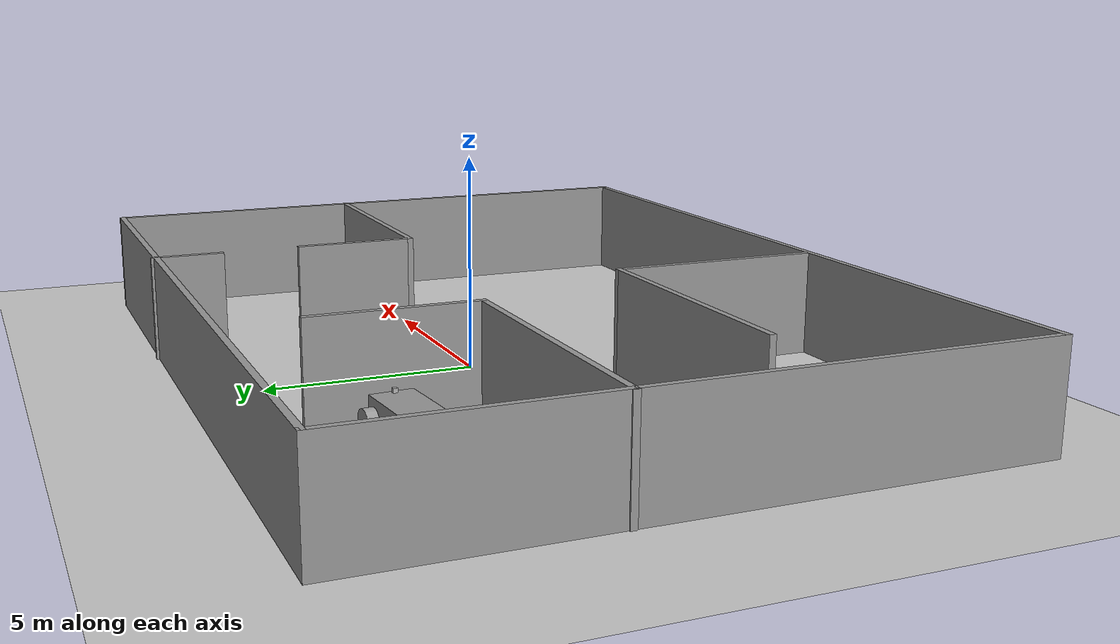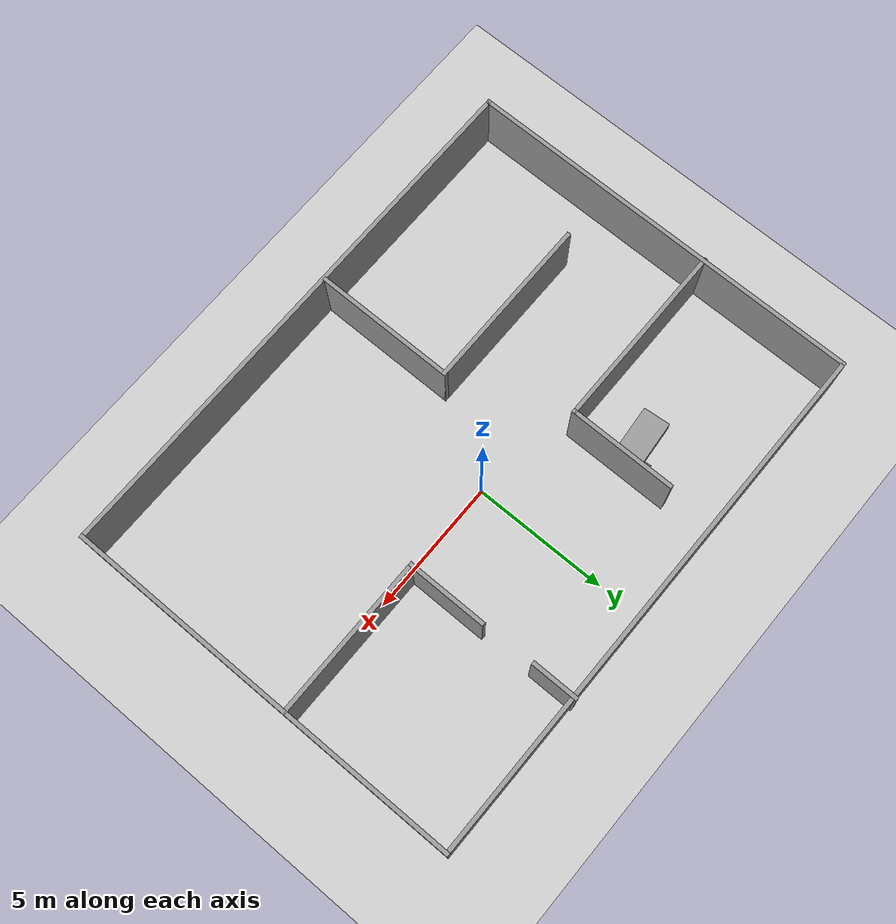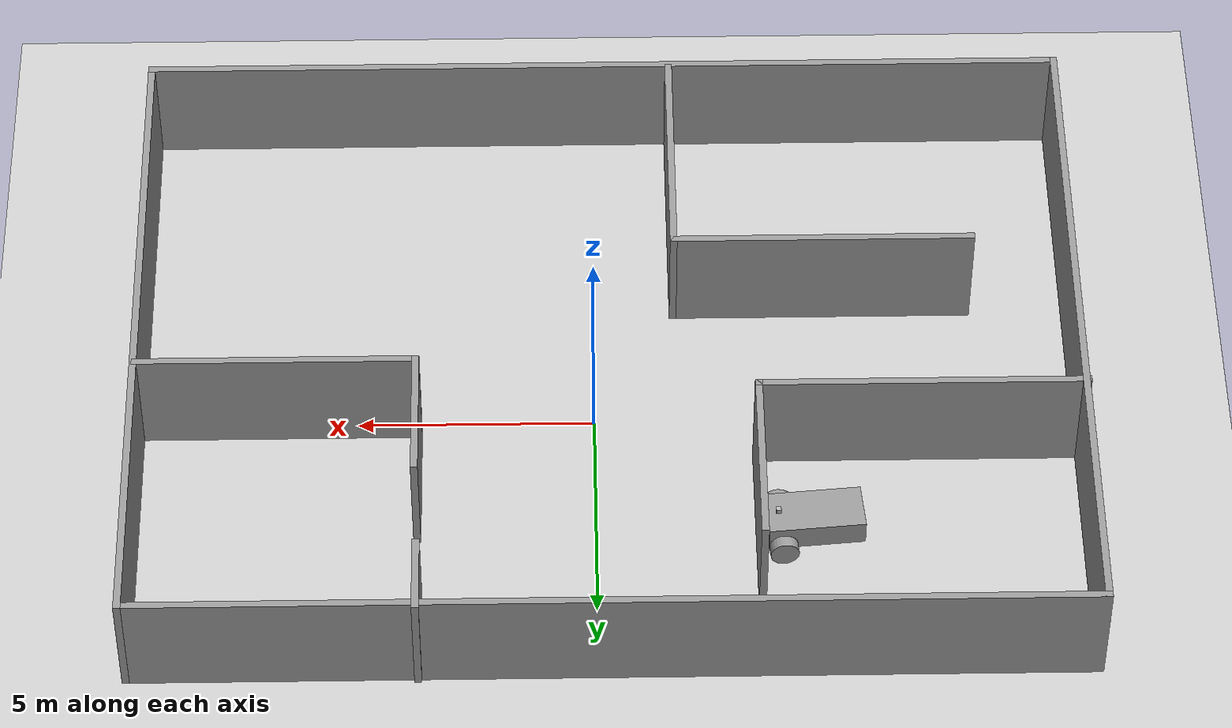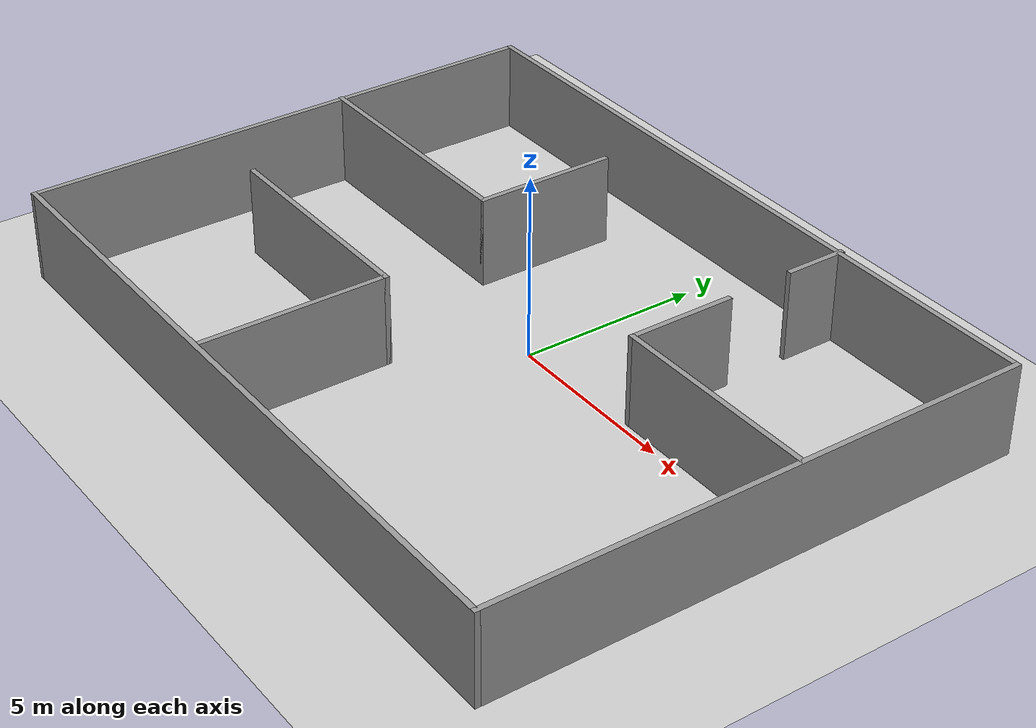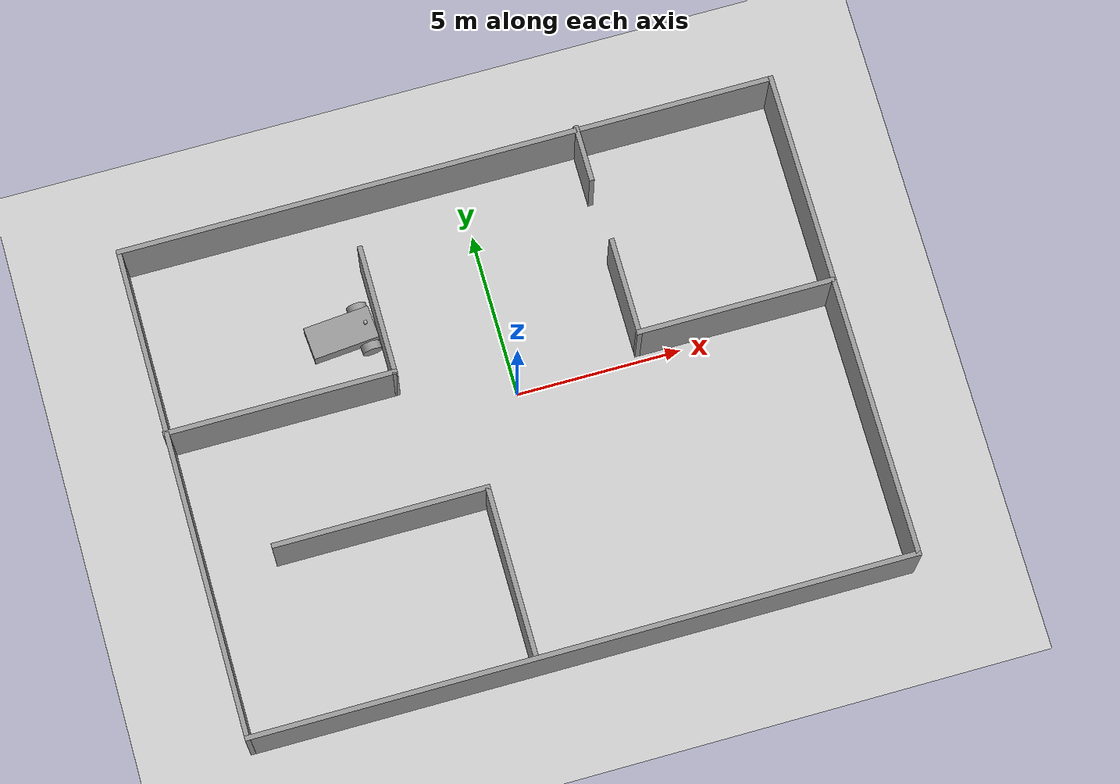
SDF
<sdf version="1.7">
 <world name="default">
  <light name="sun" type="directional">
   <pose>0 0 10 0 -0 0</pose>
   <diffuse>0.8 0.8 0.8 1</diffuse>
   <specular>0.2 0.2 0.2 1</specular>
   <attenuation>
    <range>1000</range>
    <constant>0.9</constant>
    <linear>0.01</linear>
    <quadratic>0.001</quadratic>
   </attenuation>
   <direction>-0.5 0.1 -0.9</direction>
   <spot><inner_angle>0</inner_angle><outer_angle>0</outer_angle><falloff>0</falloff></spot>
  </light>
  <model name="ground_plane">
   <static>1</static>
   <link name="link">
    <collision name="collision">
     <geometry><plane><normal>0 0 1</normal><size>100 100</size></plane></geometry>
     <surface><friction><ode><mu>100</mu><mu2>50</mu2></ode></friction></surface>
    </collision>
    <visual name="visual">
     <cast_shadows>0</cast_shadows>
     <geometry><plane><normal>0 0 1</normal><size>100 100</size></plane></geometry>
     <material>
      <script><uri>file://media/materials/scripts/gazebo.material</uri><name>Gazebo/Grey</name></script>
     </material>
    </visual>
   </link>
  </model>
  <gravity>0 0 -9.8</gravity>
  <magnetic_field>6e-06 2.3e-05 -4.2e-05</magnetic_field>
  <atmosphere type="adiabatic"/>
  <physics type="ode">
   <max_step_size>0.001</max_step_size>
   <real_time_factor>1</real_time_factor>
   <real_time_update_rate>1000</real_time_update_rate>
  </physics>
  <scene><ambient>0.4 0.4 0.4 1</ambient><background>0.7 0.7 0.7 1</background><shadows>1</shadows></scene>
  <audio><device>default</device></audio>
  <spherical_coordinates>
   <surface_model>EARTH_WGS84</surface_model>
   <latitude_deg>0</latitude_deg>
   <longitude_deg>0</longitude_deg>
   <elevation>0</elevation>
   <heading_deg>0</heading_deg>
  </spherical_coordinates>
  <model name="model">
   <pose>-0.321326 -0.7438 0 0 -0 0</pose>
   <link name="Wall_16">
    <collision name="Wall_16_Collision">
     <geometry><box><size>20 0.15 2.5</size></box></geometry>
     <pose>0 0 1.25 0 -0 0</pose>
    </collision>
    <visual name="Wall_16_Visual">
     <pose>0 0 1.25 0 -0 0</pose>
     <geometry><box><size>20 0.15 2.5</size></box></geometry>
     <material>
      <script><uri>file://media/materials/scripts/gazebo.material</uri><name>Gazebo/Grey</name></script>
      <ambient>1 1 1 1</ambient>
     </material>
     <meta><layer>0</layer></meta>
    </visual>
    <pose>0.017228 7.39371 0 0 -0 4e-06</pose>
   </link>
   <link name="Wall_17">
    <collision name="Wall_17_Collision">
     <geometry><box><size>15 0.15 2.5</size></box></geometry>
     <pose>0 0 1.25 0 -0 0</pose>
    </collision>
    <visual name="Wall_17_Visual">
     <pose>0 0 1.25 0 -0 0</pose>
     <geometry><box><size>15 0.15 2.5</size></box></geometry>
     <material>
      <script><uri>file://media/materials/scripts/gazebo.material</uri><name>Gazebo/Grey</name></script>
      <ambient>1 1 1 1</ambient>
     </material>
     <meta><layer>0</layer></meta>
    </visual>
    <pose>9.94228 -0.031247 0 0 -0 -1.5708</pose>
   </link>
   <link name="Wall_19">
    <collision name="Wall_19_Collision">
     <geometry><box><size>20 0.15 2.5</size></box></geometry>
     <pose>0 0 1.25 0 -0 0</pose>
    </collision>
    <visual name="Wall_19_Visual">
     <pose>0 0 1.25 0 -0 0</pose>
     <geometry><box><size>20 0.15 2.5</size></box></geometry>
     <material>
      <script><uri>file://media/materials/scripts/gazebo.material</uri><name>Gazebo/Grey</name></script>
      <ambient>1 1 1 1</ambient>
     </material>
     <meta><layer>0</layer></meta>
    </visual>
    <pose>0.017281 -7.45625 0 0 -0 3.14159</pose>
   </link>
   <link name="Wall_20">
    <collision name="Wall_20_Collision">
     <geometry><box><size>14.9999 0.15 2.5</size></box></geometry>
     <pose>0 0 1.25 0 -0 0</pose>
    </collision>
    <visual name="Wall_20_Visual">
     <pose>0 0 1.25 0 -0 0</pose>
     <geometry><box><size>14.9999 0.15 2.5</size></box></geometry>
     <material>
      <script><uri>file://media/materials/scripts/gazebo.material</uri><name>Gazebo/Grey</name></script>
      <ambient>1 1 1 1</ambient>
     </material>
     <meta><layer>0</layer></meta>
    </visual>
    <pose>-9.90777 -0.031286 0 0 -0 1.5708</pose>
   </link>
   <link name="Wall_23">
    <collision name="Wall_23_Collision">
     <geometry><box><size>7 0.15 2.5</size></box></geometry>
     <pose>0 0 1.25 0 -0 0</pose>
    </collision>
    <visual name="Wall_23_Visual">
     <pose>0 0 1.25 0 -0 0</pose>
     <geometry><box><size>7 0.15 2.5</size></box></geometry>
     <material>
      <script><uri>file://media/materials/scripts/gazebo.material</uri><name>Gazebo/Grey</name></script>
      <ambient>1 1 1 1</ambient>
     </material>
     <meta><layer>0</layer></meta>
    </visual>
    <pose>-6.51728 1.74902 0 0 -0 0</pose>
   </link>
   <link name="Wall_24">
    <collision name="Wall_24_Collision">
     <geometry><box><size>4 0.15 2.5</size></box></geometry>
     <pose>0 0 1.25 0 -0 0</pose>
    </collision>
    <visual name="Wall_24_Visual">
     <pose>0 0 1.25 0 -0 0</pose>
     <geometry><box><size>4 0.15 2.5</size></box></geometry>
     <material>
      <script><uri>file://media/materials/scripts/gazebo.material</uri><name>Gazebo/Grey</name></script>
      <ambient>1 1 1 1</ambient>
     </material>
     <meta><layer>0</layer></meta>
    </visual>
    <pose>-3.09228 3.67402 0 0 -0 1.5708</pose>
   </link>
   <link name="Wall_26">
    <collision name="Wall_26_Collision">
     <geometry><box><size>5.25 0.15 2.5</size></box></geometry>
     <pose>0 0 1.25 0 -0 0</pose>
    </collision>
    <visual name="Wall_26_Visual">
     <pose>0 0 1.25 0 -0 0</pose>
     <geometry><box><size>5.25 0.15 2.5</size></box></geometry>
     <material>
      <script><uri>file://media/materials/scripts/gazebo.material</uri><name>Gazebo/Grey</name></script>
      <ambient>1 1 1 1</ambient>
     </material>
     <meta><layer>0</layer></meta>
    </visual>
    <pose>-1.41491 -4.8295 0 0 -0 1.5708</pose>
   </link>
   <link name="Wall_27">
    <collision name="Wall_27_Collision">
     <geometry><box><size>6.5 0.15 2.5</size></box></geometry>
     <pose>0 0 1.25 0 -0 0</pose>
    </collision>
    <visual name="Wall_27_Visual">
     <pose>0 0 1.25 0 -0 0</pose>
     <geometry><box><size>6.5 0.15 2.5</size></box></geometry>
     <material>
      <script><uri>file://media/materials/scripts/gazebo.material</uri><name>Gazebo/Grey</name></script>
      <ambient>1 1 1 1</ambient>
     </material>
     <meta><layer>0</layer></meta>
    </visual>
    <pose>-4.58992 -2.2795 0 0 -0 3.14159</pose>
   </link>
   <link name="Wall_29">
    <collision name="Wall_29_Collision">
     <geometry><box><size>6 0.15 2.5</size></box></geometry>
     <pose>0 0 1.25 0 -0 0</pose>
    </collision>
    <visual name="Wall_29_Visual">
     <pose>0 0 1.25 0 -0 0</pose>
     <geometry><box><size>6 0.15 2.5</size></box></geometry>
     <material>
      <script><uri>file://media/materials/scripts/gazebo.material</uri><name>Gazebo/Grey</name></script>
      <ambient>1 1 1 1</ambient>
     </material>
     <meta><layer>0</layer></meta>
    </visual>
    <pose>6.97515 0.990149 0 0 -0 3.14159</pose>
   </link>
   <link name="Wall_30">
    <collision name="Wall_30_Collision">
     <geometry><box><size>3 0.15 2.5</size></box></geometry>
     <pose>0 0 1.25 0 -0 0</pose>
    </collision>
    <visual name="Wall_30_Visual">
     <pose>0 0 1.25 0 -0 0</pose>
     <geometry><box><size>3 0.15 2.5</size></box></geometry>
     <material>
      <script><uri>file://media/materials/scripts/gazebo.material</uri><name>Gazebo/Grey</name></script>
      <ambient>1 1 1 1</ambient>
     </material>
     <meta><layer>0</layer></meta>
    </visual>
    <pose>4.05015 2.41515 0 0 -0 1.5708</pose>
   </link>
   <link name="Wall_32">
    <collision name="Wall_32_Collision">
     <geometry><box><size>1.75 0.15 2.5</size></box></geometry>
     <pose>0 0 1.25 0 -0 0</pose>
    </collision>
    <visual name="Wall_32_Visual">
     <pose>0 0 1.25 0 -0 0</pose>
     <geometry><box><size>1.75 0.15 2.5</size></box></geometry>
     <material>
      <script><uri>file://media/materials/scripts/gazebo.material</uri><name>Gazebo/Grey</name></script>
      <ambient>1 1 1 1</ambient>
     </material>
     <meta><layer>0</layer></meta>
    </visual>
    <pose>3.99046 6.65625 0 0 -0 -1.5708</pose>
   </link>
   <static>1</static>
  </model>
  <model name="follower_vehicle">
   <pose>-4.40275 3.03855 0.325007 0 -8e-06 0.083924</pose>
   <link name="chassis">
    <pose>-0.151427 -0 0.175 0 -0 0</pose>
    <inertial>
     <mass>1.14395</mass>
     <inertia>
      <ixx>0.126164</ixx>
      <ixy>0</ixy>
      <ixz>0</ixz>
      <iyy>0.416519</iyy>
      <iyz>0</iyz>
      <izz>0.481014</izz>
     </inertia>
    </inertial>
    <visual name="visual">
     <geometry><box><size>2.01142 1 0.568726</size></box></geometry>
     <material>
      <script><uri>file://media/materials/scripts/gazebo.material</uri><name>Gazebo/Grey</name></script>
     </material>
    </visual>
    <collision name="collision">
     <geometry><box><size>2.01142 1 0.568726</size></box></geometry>
     <surface>
      <friction><ode><mu>1</mu><mu2>1</mu2><fdir1>0 0 0</fdir1><slip1>0</slip1><slip2>0</slip2></ode></friction>
      <bounce><restitution_coefficient>0</restitution_coefficient><threshold>1e+06</threshold></bounce>
      <contact>
       <collide_without_contact>0</collide_without_contact>
       <collide_without_contact_bitmask>1</collide_without_contact_bitmask>
       <collide_bitmask>1</collide_bitmask>
       <ode>
        <soft_cfm>0</soft_cfm>
        <soft_erp>0.2</soft_erp>
        <kp>1e+13</kp>
        <kd>1</kd>
        <max_vel>0.01</max_vel>
        <min_depth>0</min_depth>
       </ode>
      </contact>
     </surface>
    </collision>
   </link>
   <link name="wheel_1">
    <pose>0.554283 0.625029 -0.025 1.5707 -0 0</pose>
    <inertial>
     <mass>2</mass>
     <inertia><ixx>0.145833</ixx><ixy>0</ixy><ixz>0</ixz><iyy>0.145833</iyy><iyz>0</iyz><izz>0.125</izz></inertia>
    </inertial>
    <visual name="visual">
     <geometry><cylinder><radius>0.3</radius><length>0.25</length></cylinder></geometry>
     <material>
      <script><uri>file://media/materials/scripts/gazebo.material</uri><name>Gazebo/Grey</name></script>
     </material>
    </visual>
    <collision name="collision">
     <geometry><cylinder><radius>0.3</radius><length>0.25</length></cylinder></geometry>
     <surface>
      <friction><ode><mu>1</mu><mu2>1</mu2><fdir1>0 0 0</fdir1><slip1>0</slip1><slip2>0</slip2></ode></friction>
      <bounce><restitution_coefficient>0</restitution_coefficient><threshold>1e+06</threshold></bounce>
      <contact>
       <collide_without_contact>0</collide_without_contact>
       <collide_without_contact_bitmask>1</collide_without_contact_bitmask>
       <collide_bitmask>1</collide_bitmask>
       <ode>
        <soft_cfm>0</soft_cfm>
        <soft_erp>0.2</soft_erp>
        <kp>1e+13</kp>
        <kd>1</kd>
        <max_vel>0.01</max_vel>
        <min_depth>0</min_depth>
       </ode>
      </contact>
     </surface>
    </collision>
   </link>
   <link name="wheel_2">
    <pose>0.554282 -0.625029 -0.025 1.5707 -0 0</pose>
    <inertial>
     <mass>2</mass>
     <inertia><ixx>0.145833</ixx><ixy>0</ixy><ixz>0</ixz><iyy>0.145833</iyy><iyz>0</iyz><izz>0.125</izz></inertia>
    </inertial>
    <visual name="visual">
     <geometry><cylinder><radius>0.3</radius><length>0.25</length></cylinder></geometry>
     <material>
      <script><uri>file://media/materials/scripts/gazebo.material</uri><name>Gazebo/Grey</name></script>
     </material>
    </visual>
    <collision name="collision">
     <geometry><cylinder><radius>0.3</radius><length>0.25</length></cylinder></geometry>
     <surface>
      <friction><ode><mu>1</mu><mu2>1</mu2><fdir1>0 0 0</fdir1><slip1>0</slip1><slip2>0</slip2></ode></friction>
      <bounce><restitution_coefficient>0</restitution_coefficient><threshold>1e+06</threshold></bounce>
      <contact>
       <collide_without_contact>0</collide_without_contact>
       <collide_without_contact_bitmask>1</collide_without_contact_bitmask>
       <collide_bitmask>1</collide_bitmask>
       <ode>
        <soft_cfm>0</soft_cfm>
        <soft_erp>0.2</soft_erp>
        <kp>1e+13</kp>
        <kd>1</kd>
        <max_vel>0.01</max_vel>
        <min_depth>0</min_depth>
       </ode>
      </contact>
     </surface>
    </collision>
   </link>
   <link name="caster">
    <pose>-0.957138 -0 -0.125 0 -0 0</pose>
    <inertial>
     <mass>1</mass>
     <inertia><ixx>0.1</ixx><ixy>0</ixy><ixz>0</ixz><iyy>0.1</iyy><iyz>0</iyz><izz>0.1</izz></inertia>
    </inertial>
    <visual name="visual">
     <geometry><sphere><radius>0.2</radius></sphere></geometry>
     <material>
      <script><uri>file://media/materials/scripts/gazebo.material</uri><name>Gazebo/Grey</name></script>
     </material>
    </visual>
    <collision name="collision">
     <geometry><sphere><radius>0.2</radius></sphere></geometry>
     <surface>
      <friction><ode><mu>1</mu><mu2>1</mu2><fdir1>0 0 0</fdir1><slip1>0</slip1><slip2>0</slip2></ode></friction>
      <bounce><restitution_coefficient>0</restitution_coefficient><threshold>1e+06</threshold></bounce>
      <contact>
       <collide_without_contact>0</collide_without_contact>
       <collide_without_contact_bitmask>1</collide_without_contact_bitmask>
       <collide_bitmask>1</collide_bitmask>
       <ode>
        <soft_cfm>0</soft_cfm>
        <soft_erp>0.2</soft_erp>
        <kp>1e+13</kp>
        <kd>1</kd>
        <max_vel>0.01</max_vel>
        <min_depth>0</min_depth>
       </ode>
      </contact>
     </surface>
    </collision>
   </link>
   <model name="depth_camera">
    <link name="link">
     <pose>0.05 0.05 0.05 0 -0 0</pose>
     <inertial>
      <mass>0.1</mass>
      <inertia>
       <ixx>0.000166667</ixx>
       <iyy>0.000166667</iyy>
       <izz>0.000166667</izz>
       <ixy>0</ixy>
       <ixz>0</ixz>
       <iyz>0</iyz>
      </inertia>
     </inertial>
     <collision name="collision"><geometry><box><size>0.1 0.1 0.1</size></box></geometry></collision>
     <visual name="visual"><geometry><box><size>0.1 0.1 0.1</size></box></geometry></visual>
     <sensor name="camera" type="depth">
      <camera name="depth">
       <horizontal_fov>1.047</horizontal_fov>
       <image><width>320</width><height>240</height></image>
       <clip><near>0.1</near><far>100</far></clip>
      </camera>
      <always_on>1</always_on>
      <update_rate>30</update_rate>
      <visualize>1</visualize>
     </sensor>
    </link>
    <pose>0.569632 -0.03223 0.502056 0 -0 0</pose>
   </model>
   <joint name="chassis_wheel_1_revolute" type="revolute">
    <parent>chassis</parent>
    <child>wheel_1</child>
    <axis>
     <xyz>0 0 1</xyz>
     <limit>
      <lower>-1.79769e+308</lower>
      <upper>1.79769e+308</upper>
      <effort>-1</effort>
      <velocity>-1</velocity>
     </limit>
     <dynamics>
      <spring_reference>0</spring_reference>
      <spring_stiffness>0</spring_stiffness>
      <damping>0</damping>
      <friction>0</friction>
     </dynamics>
    </axis>
    <physics>
     <ode><limit><cfm>0</cfm><erp>0.2</erp></limit><suspension><cfm>0</cfm><erp>0.2</erp></suspension></ode>
    </physics>
   </joint>
   <joint name="chassis_wheel_2_revolute" type="revolute">
    <parent>chassis</parent>
    <child>wheel_2</child>
    <axis>
     <xyz>0 0 1</xyz>
     <limit>
      <lower>-1.79769e+308</lower>
      <upper>1.79769e+308</upper>
      <effort>-1</effort>
      <velocity>-1</velocity>
     </limit>
     <dynamics>
      <spring_reference>0</spring_reference>
      <spring_stiffness>0</spring_stiffness>
      <damping>0</damping>
      <friction>0</friction>
     </dynamics>
    </axis>
    <physics>
     <ode><limit><cfm>0</cfm><erp>0.2</erp></limit><suspension><cfm>0</cfm><erp>0.2</erp></suspension></ode>
    </physics>
   </joint>
   <joint name="chassis_caster_ball" type="ball">
    <parent>chassis</parent>
    <child>caster</child>
    <physics>
     <ode><limit><cfm>0</cfm><erp>0.2</erp></limit><suspension><cfm>0</cfm><erp>0.2</erp></suspension></ode>
    </physics>
   </joint>
   <joint name="chassis_depth_camera_link_fixed" type="fixed">
    <parent>chassis</parent>
    <child>depth_camera::link</child>
    <physics>
     <ode><limit><cfm>0</cfm><erp>0.2</erp></limit><suspension><cfm>0</cfm><erp>0.2</erp></suspension></ode>
    </physics>
   </joint>
   <static>0</static>
   <plugin name="follower" filename="libFollowerPlugin.so"/>
  </model>
 </world>
</sdf>
